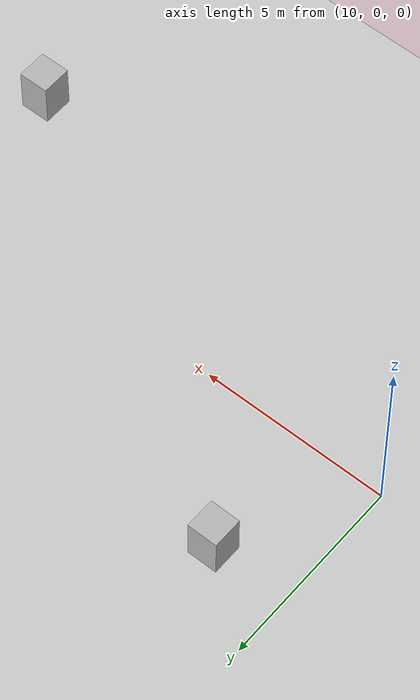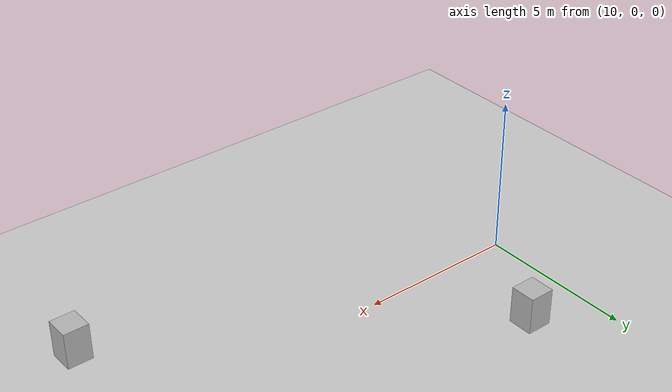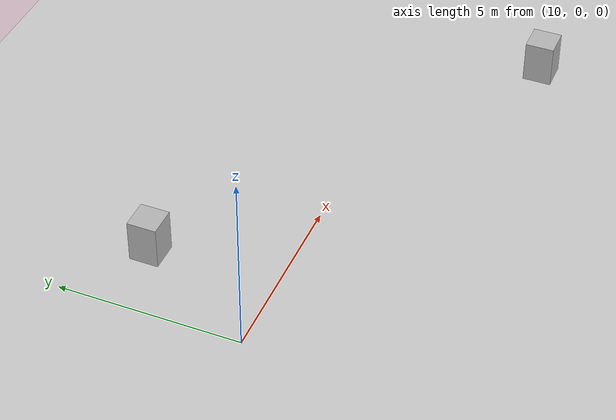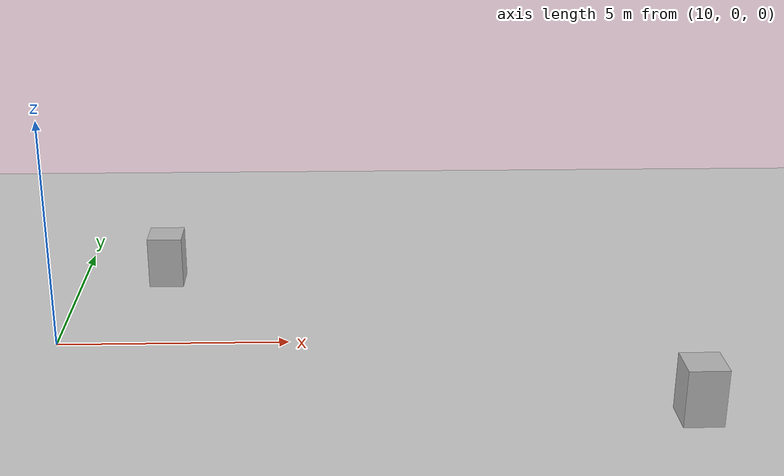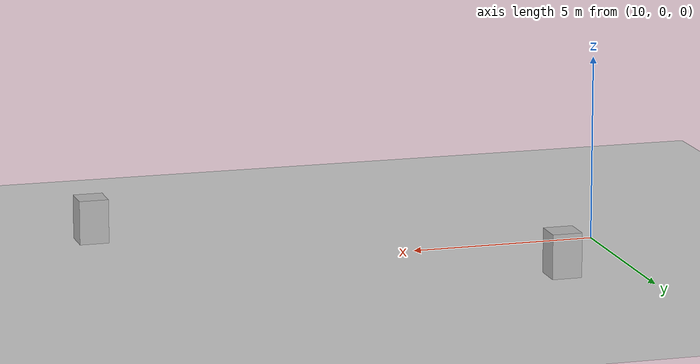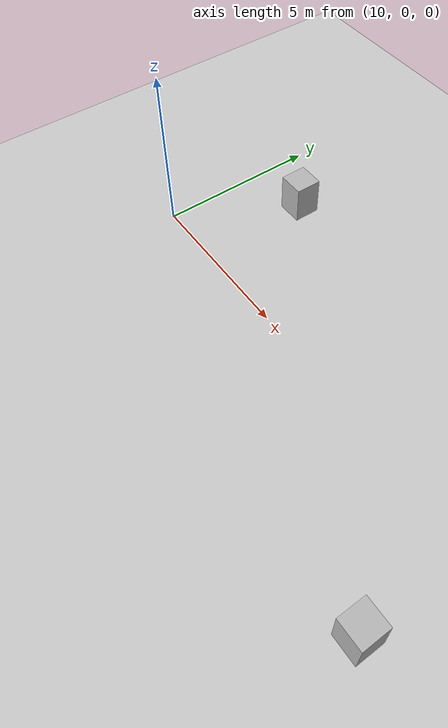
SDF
<?xml version="1.0"?>
<sdf version="1.6">
  <world name="v2-04g-r1-cruise-s4923">
    <gravity>0 0 -9.81</gravity>
    <physics name="v2_deterministic" type="ode">
      <max_step_size>0.002</max_step_size>
      <real_time_update_rate>500</real_time_update_rate>
    </physics>
    <include>
      <uri>model://sun</uri>
    </include>
    <include>
      <uri>model://ground_plane</uri>
    </include>
    <model name="cruise-left">
      <static>true</static>
      <pose>12.006688007 3.443839736 0.600000000 0 0 -0.000161357</pose>
      <link name="link">
        <collision name="collision">
          <geometry>
            <box>
              <size>0.800000 0.800000 1.200000</size>
            </box>
          </geometry>
        </collision>
        <visual name="visual">
          <geometry>
            <box>
              <size>0.800000 0.800000 1.200000</size>
            </box>
          </geometry>
        </visual>
      </link>
    </model>
    <model name="cruise-right">
      <static>true</static>
      <pose>23.031922425 -3.473556005 0.600000000 0 0 0.005488361</pose>
      <link name="link">
        <collision name="collision">
          <geometry>
            <box>
              <size>0.800000 0.800000 1.200000</size>
            </box>
          </geometry>
        </collision>
        <visual name="visual">
          <geometry>
            <box>
              <size>0.800000 0.800000 1.200000</size>
            </box>
          </geometry>
        </visual>
      </link>
    </model>
  </world>
</sdf>
